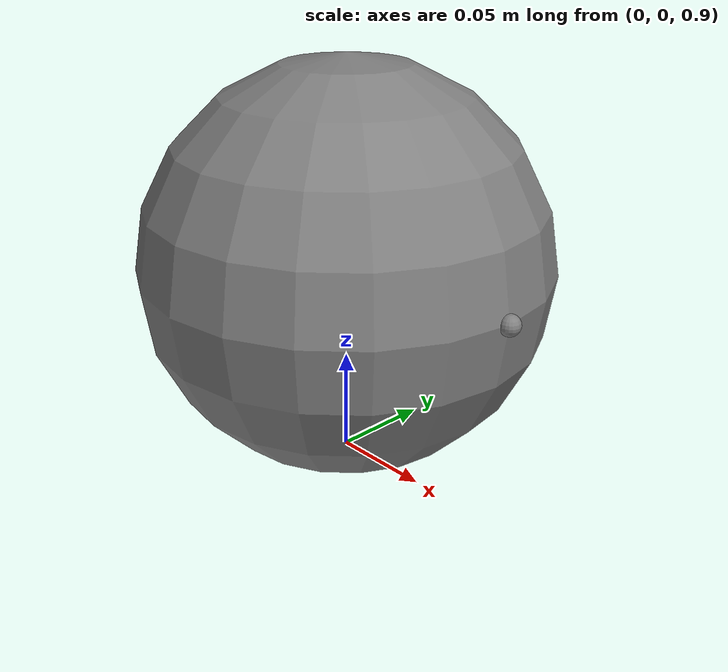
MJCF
<mujoco>
      <option gravity="0 0 -9.81"/>
      <worldbody>
        <body name="b1" pos="0 0 1">
          <joint name="j1" type="hinge" axis="0 1 0"/>
          <geom type="sphere" size="0.1" mass="1.0"/>
          <site name="s1" pos="0 0 0"/>
          <site name="s2" pos="0.1 0 0"/>
          <site name="s3" pos="0 0.1 0"/>
        </body>
      </worldbody>
      <sensor>
        <accelerometer site="s1"/>
        <accelerometer site="s2"/>
        <accelerometer site="s3"/>
      </sensor>
    </mujoco>
